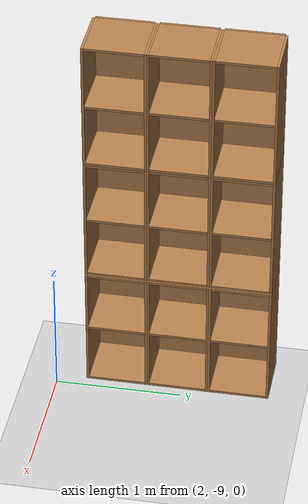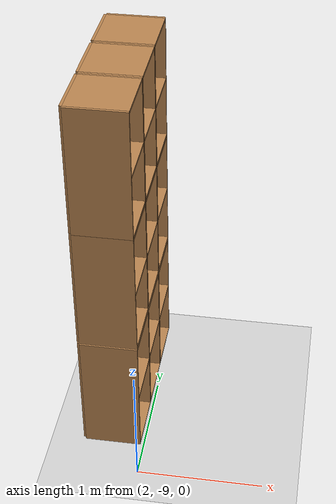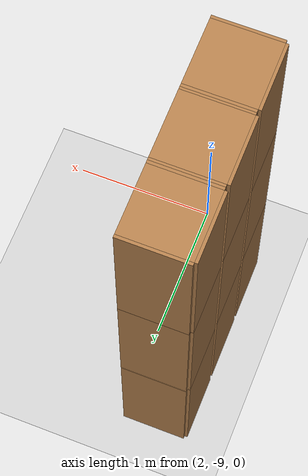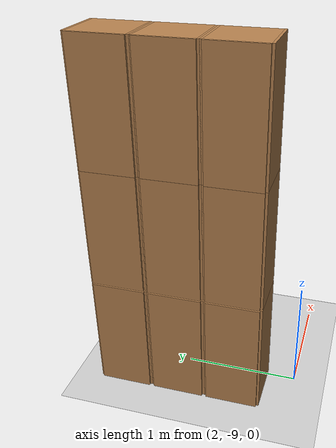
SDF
<sdf version="1.6">
 <world name="default">
  <model name="ground_plane">
   <static>1</static>
   <link name="link">
    <collision name="collision">
     <geometry><plane><normal>0 0 1</normal><size>100 100</size></plane></geometry>
     <surface>
      <contact><collide_bitmask>65535</collide_bitmask></contact>
      <friction><ode><mu>100</mu><mu2>50</mu2></ode></friction>
     </surface>
    </collision>
    <visual name="visual">
     <cast_shadows>0</cast_shadows>
     <geometry><plane><normal>0 0 1</normal><size>100 100</size></plane></geometry>
     <material>
      <script><uri>file://media/materials/scripts/gazebo.material</uri><name>Gazebo/Grey</name></script>
     </material>
    </visual>
   </link>
  </model>
  <model name="Locker18_clone_4_clone_2_clone_1_clone_clone_clone_3_clone_2">
   <model name="Locker18">
    <model name="Locker3">
     <model name="cabinet">
      <static>1</static>
      <link name="cabinet_bottom_plate">
       <inertial>
        <pose>0 0 -1 0 -0 0</pose>
        <inertia><ixx>2.05</ixx><ixy>0</ixy><ixz>0</ixz><iyy>2.05</iyy><iyz>0</iyz><izz>2.05</izz></inertia>
        <mass>25</mass>
       </inertial>
       <collision name="cabinet_bottom_plate_geom">
        <pose>0 0 0.01 0 -0 0</pose>
        <geometry><box><size>0.45 0.45 0.02</size></box></geometry>
       </collision>
       <visual name="cabinet_bottom_plate_geom_visual">
        <pose>0 0 0.01 0 -0 0</pose>
        <geometry><box><size>0.45 0.45 0.02</size></box></geometry>
        <material>
         <script><uri>file://media/materials/scripts/gazebo.material</uri><name>Gazebo/Wood</name></script>
        </material>
       </visual>
       <collision name="cabinet_bottom_plate_geom_cabinet_back_plate">
        <pose>0.235 0 0.51 0 -0 0</pose>
        <geometry><box><size>0.02 0.45 1.02</size></box></geometry>
       </collision>
       <visual name="cabinet_bottom_plate_geom_cabinet_back_plate_visual">
        <pose>0.235 0 0.51 0 -0 0</pose>
        <geometry><box><size>0.02 0.45 1.02</size></box></geometry>
        <material>
         <script><uri>file://media/materials/scripts/gazebo.material</uri><name>Gazebo/Wood</name></script>
        </material>
       </visual>
       <collision name="cabinet_bottom_plate_geom_cabinet_left_plate">
        <pose>0 0.235 0.51 0 -0 0</pose>
        <geometry><box><size>0.45 0.02 1.02</size></box></geometry>
       </collision>
       <visual name="cabinet_bottom_plate_geom_cabinet_left_plate_visual">
        <pose>0 0.235 0.51 0 -0 0</pose>
        <geometry><box><size>0.45 0.02 1.02</size></box></geometry>
        <material>
         <script><uri>file://media/materials/scripts/gazebo.material</uri><name>Gazebo/Wood</name></script>
        </material>
       </visual>
       <collision name="cabinet_bottom_plate_geom_cabinet_middle_plate">
        <pose>0 0 0.51 0 -0 0</pose>
        <geometry><box><size>0.45 0.45 0.02</size></box></geometry>
       </collision>
       <visual name="cabinet_bottom_plate_geom_cabinet_middle_plate_visual">
        <pose>0 0 0.51 0 -0 0</pose>
        <geometry><box><size>0.45 0.45 0.02</size></box></geometry>
        <material>
         <script><uri>file://media/materials/scripts/gazebo.material</uri><name>Gazebo/Wood</name></script>
        </material>
       </visual>
       <collision name="cabinet_bottom_plate_geom_cabinet_right_plate">
        <pose>0 -0.235 0.51 0 -0 0</pose>
        <geometry><box><size>0.45 0.02 1.02</size></box></geometry>
       </collision>
       <visual name="cabinet_bottom_plate_geom_cabinet_right_plate_visual">
        <pose>0 -0.235 0.51 0 -0 0</pose>
        <geometry><box><size>0.45 0.02 1.02</size></box></geometry>
        <material>
         <script><uri>file://media/materials/scripts/gazebo.material</uri><name>Gazebo/Wood</name></script>
        </material>
       </visual>
       <collision name="cabinet_bottom_plate_geom_cabinet_top_plate">
        <pose>0 0 1.01 0 -0 0</pose>
        <geometry><box><size>0.45 0.45 0.02</size></box></geometry>
       </collision>
       <visual name="cabinet_bottom_plate_geom_cabinet_top_plate_visual">
        <pose>0 0 1.01 0 -0 0</pose>
        <geometry><box><size>0.45 0.45 0.02</size></box></geometry>
        <material>
         <script><uri>file://media/materials/scripts/gazebo.material</uri><name>Gazebo/Wood</name></script>
        </material>
       </visual>
      </link>
      <pose>-0.676968 1.45758 0 0 -0 0</pose>
     </model>
     <model name="cabinet_clone">
      <static>1</static>
      <link name="cabinet_bottom_plate">
       <inertial>
        <pose>0 0 -1 0 -0 0</pose>
        <inertia><ixx>2.05</ixx><ixy>0</ixy><ixz>0</ixz><iyy>2.05</iyy><iyz>0</iyz><izz>2.05</izz></inertia>
        <mass>25</mass>
       </inertial>
       <collision name="cabinet_bottom_plate_geom">
        <pose>0 0 0.01 0 -0 0</pose>
        <geometry><box><size>0.45 0.45 0.02</size></box></geometry>
       </collision>
       <visual name="cabinet_bottom_plate_geom_visual">
        <pose>0 0 0.01 0 -0 0</pose>
        <geometry><box><size>0.45 0.45 0.02</size></box></geometry>
        <material>
         <script><uri>file://media/materials/scripts/gazebo.material</uri><name>Gazebo/Wood</name></script>
        </material>
       </visual>
       <collision name="cabinet_bottom_plate_geom_cabinet_back_plate">
        <pose>0.235 0 0.51 0 -0 0</pose>
        <geometry><box><size>0.02 0.45 1.02</size></box></geometry>
       </collision>
       <visual name="cabinet_bottom_plate_geom_cabinet_back_plate_visual">
        <pose>0.235 0 0.51 0 -0 0</pose>
        <geometry><box><size>0.02 0.45 1.02</size></box></geometry>
        <material>
         <script><uri>file://media/materials/scripts/gazebo.material</uri><name>Gazebo/Wood</name></script>
        </material>
       </visual>
       <collision name="cabinet_bottom_plate_geom_cabinet_left_plate">
        <pose>0 0.235 0.51 0 -0 0</pose>
        <geometry><box><size>0.45 0.02 1.02</size></box></geometry>
       </collision>
       <visual name="cabinet_bottom_plate_geom_cabinet_left_plate_visual">
        <pose>0 0.235 0.51 0 -0 0</pose>
        <geometry><box><size>0.45 0.02 1.02</size></box></geometry>
        <material>
         <script><uri>file://media/materials/scripts/gazebo.material</uri><name>Gazebo/Wood</name></script>
        </material>
       </visual>
       <collision name="cabinet_bottom_plate_geom_cabinet_middle_plate">
        <pose>0 0 0.51 0 -0 0</pose>
        <geometry><box><size>0.45 0.45 0.02</size></box></geometry>
       </collision>
       <visual name="cabinet_bottom_plate_geom_cabinet_middle_plate_visual">
        <pose>0 0 0.51 0 -0 0</pose>
        <geometry><box><size>0.45 0.45 0.02</size></box></geometry>
        <material>
         <script><uri>file://media/materials/scripts/gazebo.material</uri><name>Gazebo/Wood</name></script>
        </material>
       </visual>
       <collision name="cabinet_bottom_plate_geom_cabinet_right_plate">
        <pose>0 -0.235 0.51 0 -0 0</pose>
        <geometry><box><size>0.45 0.02 1.02</size></box></geometry>
       </collision>
       <visual name="cabinet_bottom_plate_geom_cabinet_right_plate_visual">
        <pose>0 -0.235 0.51 0 -0 0</pose>
        <geometry><box><size>0.45 0.02 1.02</size></box></geometry>
        <material>
         <script><uri>file://media/materials/scripts/gazebo.material</uri><name>Gazebo/Wood</name></script>
        </material>
       </visual>
       <collision name="cabinet_bottom_plate_geom_cabinet_top_plate">
        <pose>0 0 1.01 0 -0 0</pose>
        <geometry><box><size>0.45 0.45 0.02</size></box></geometry>
       </collision>
       <visual name="cabinet_bottom_plate_geom_cabinet_top_plate_visual">
        <pose>0 0 1.01 0 -0 0</pose>
        <geometry><box><size>0.45 0.45 0.02</size></box></geometry>
        <material>
         <script><uri>file://media/materials/scripts/gazebo.material</uri><name>Gazebo/Wood</name></script>
        </material>
       </visual>
      </link>
      <pose>-0.676968 0.970971 0 0 -0 0</pose>
     </model>
     <model name="cabinet_clone_0">
      <static>1</static>
      <link name="cabinet_bottom_plate">
       <inertial>
        <pose>0 0 -1 0 -0 0</pose>
        <inertia><ixx>2.05</ixx><ixy>0</ixy><ixz>0</ixz><iyy>2.05</iyy><iyz>0</iyz><izz>2.05</izz></inertia>
        <mass>25</mass>
       </inertial>
       <collision name="cabinet_bottom_plate_geom">
        <pose>0 0 0.01 0 -0 0</pose>
        <geometry><box><size>0.45 0.45 0.02</size></box></geometry>
       </collision>
       <visual name="cabinet_bottom_plate_geom_visual">
        <pose>0 0 0.01 0 -0 0</pose>
        <geometry><box><size>0.45 0.45 0.02</size></box></geometry>
        <material>
         <script><uri>file://media/materials/scripts/gazebo.material</uri><name>Gazebo/Wood</name></script>
        </material>
       </visual>
       <collision name="cabinet_bottom_plate_geom_cabinet_back_plate">
        <pose>0.235 0 0.51 0 -0 0</pose>
        <geometry><box><size>0.02 0.45 1.02</size></box></geometry>
       </collision>
       <visual name="cabinet_bottom_plate_geom_cabinet_back_plate_visual">
        <pose>0.235 0 0.51 0 -0 0</pose>
        <geometry><box><size>0.02 0.45 1.02</size></box></geometry>
        <material>
         <script><uri>file://media/materials/scripts/gazebo.material</uri><name>Gazebo/Wood</name></script>
        </material>
       </visual>
       <collision name="cabinet_bottom_plate_geom_cabinet_left_plate">
        <pose>0 0.235 0.51 0 -0 0</pose>
        <geometry><box><size>0.45 0.02 1.02</size></box></geometry>
       </collision>
       <visual name="cabinet_bottom_plate_geom_cabinet_left_plate_visual">
        <pose>0 0.235 0.51 0 -0 0</pose>
        <geometry><box><size>0.45 0.02 1.02</size></box></geometry>
        <material>
         <script><uri>file://media/materials/scripts/gazebo.material</uri><name>Gazebo/Wood</name></script>
        </material>
       </visual>
       <collision name="cabinet_bottom_plate_geom_cabinet_middle_plate">
        <pose>0 0 0.51 0 -0 0</pose>
        <geometry><box><size>0.45 0.45 0.02</size></box></geometry>
       </collision>
       <visual name="cabinet_bottom_plate_geom_cabinet_middle_plate_visual">
        <pose>0 0 0.51 0 -0 0</pose>
        <geometry><box><size>0.45 0.45 0.02</size></box></geometry>
        <material>
         <script><uri>file://media/materials/scripts/gazebo.material</uri><name>Gazebo/Wood</name></script>
        </material>
       </visual>
       <collision name="cabinet_bottom_plate_geom_cabinet_right_plate">
        <pose>0 -0.235 0.51 0 -0 0</pose>
        <geometry><box><size>0.45 0.02 1.02</size></box></geometry>
       </collision>
       <visual name="cabinet_bottom_plate_geom_cabinet_right_plate_visual">
        <pose>0 -0.235 0.51 0 -0 0</pose>
        <geometry><box><size>0.45 0.02 1.02</size></box></geometry>
        <material>
         <script><uri>file://media/materials/scripts/gazebo.material</uri><name>Gazebo/Wood</name></script>
        </material>
       </visual>
       <collision name="cabinet_bottom_plate_geom_cabinet_top_plate">
        <pose>0 0 1.01 0 -0 0</pose>
        <geometry><box><size>0.45 0.45 0.02</size></box></geometry>
       </collision>
       <visual name="cabinet_bottom_plate_geom_cabinet_top_plate_visual">
        <pose>0 0 1.01 0 -0 0</pose>
        <geometry><box><size>0.45 0.45 0.02</size></box></geometry>
        <material>
         <script><uri>file://media/materials/scripts/gazebo.material</uri><name>Gazebo/Wood</name></script>
        </material>
       </visual>
      </link>
      <pose>-0.676968 0.48391 0 0 -0 0</pose>
     </model>
     <static>0</static>
     <pose>0 3e-06 -1.02763 0 -0 0</pose>
    </model>
    <model name="Locker3_clone">
     <model name="cabinet">
      <static>1</static>
      <link name="cabinet_bottom_plate">
       <inertial>
        <pose>0 0 -1 0 -0 0</pose>
        <inertia><ixx>2.05</ixx><ixy>0</ixy><ixz>0</ixz><iyy>2.05</iyy><iyz>0</iyz><izz>2.05</izz></inertia>
        <mass>25</mass>
       </inertial>
       <collision name="cabinet_bottom_plate_geom">
        <pose>0 0 0.01 0 -0 0</pose>
        <geometry><box><size>0.45 0.45 0.02</size></box></geometry>
       </collision>
       <visual name="cabinet_bottom_plate_geom_visual">
        <pose>0 0 0.01 0 -0 0</pose>
        <geometry><box><size>0.45 0.45 0.02</size></box></geometry>
        <material>
         <script><uri>file://media/materials/scripts/gazebo.material</uri><name>Gazebo/Wood</name></script>
        </material>
       </visual>
       <collision name="cabinet_bottom_plate_geom_cabinet_back_plate">
        <pose>0.235 0 0.51 0 -0 0</pose>
        <geometry><box><size>0.02 0.45 1.02</size></box></geometry>
       </collision>
       <visual name="cabinet_bottom_plate_geom_cabinet_back_plate_visual">
        <pose>0.235 0 0.51 0 -0 0</pose>
        <geometry><box><size>0.02 0.45 1.02</size></box></geometry>
        <material>
         <script><uri>file://media/materials/scripts/gazebo.material</uri><name>Gazebo/Wood</name></script>
        </material>
       </visual>
       <collision name="cabinet_bottom_plate_geom_cabinet_left_plate">
        <pose>0 0.235 0.51 0 -0 0</pose>
        <geometry><box><size>0.45 0.02 1.02</size></box></geometry>
       </collision>
       <visual name="cabinet_bottom_plate_geom_cabinet_left_plate_visual">
        <pose>0 0.235 0.51 0 -0 0</pose>
        <geometry><box><size>0.45 0.02 1.02</size></box></geometry>
        <material>
         <script><uri>file://media/materials/scripts/gazebo.material</uri><name>Gazebo/Wood</name></script>
        </material>
       </visual>
       <collision name="cabinet_bottom_plate_geom_cabinet_middle_plate">
        <pose>0 0 0.51 0 -0 0</pose>
        <geometry><box><size>0.45 0.45 0.02</size></box></geometry>
       </collision>
       <visual name="cabinet_bottom_plate_geom_cabinet_middle_plate_visual">
        <pose>0 0 0.51 0 -0 0</pose>
        <geometry><box><size>0.45 0.45 0.02</size></box></geometry>
        <material>
         <script><uri>file://media/materials/scripts/gazebo.material</uri><name>Gazebo/Wood</name></script>
        </material>
       </visual>
       <collision name="cabinet_bottom_plate_geom_cabinet_right_plate">
        <pose>0 -0.235 0.51 0 -0 0</pose>
        <geometry><box><size>0.45 0.02 1.02</size></box></geometry>
       </collision>
       <visual name="cabinet_bottom_plate_geom_cabinet_right_plate_visual">
        <pose>0 -0.235 0.51 0 -0 0</pose>
        <geometry><box><size>0.45 0.02 1.02</size></box></geometry>
        <material>
         <script><uri>file://media/materials/scripts/gazebo.material</uri><name>Gazebo/Wood</name></script>
        </material>
       </visual>
       <collision name="cabinet_bottom_plate_geom_cabinet_top_plate">
        <pose>0 0 1.01 0 -0 0</pose>
        <geometry><box><size>0.45 0.45 0.02</size></box></geometry>
       </collision>
       <visual name="cabinet_bottom_plate_geom_cabinet_top_plate_visual">
        <pose>0 0 1.01 0 -0 0</pose>
        <geometry><box><size>0.45 0.45 0.02</size></box></geometry>
        <material>
         <script><uri>file://media/materials/scripts/gazebo.material</uri><name>Gazebo/Wood</name></script>
        </material>
       </visual>
      </link>
      <pose>-0.676968 1.45758 0 0 -0 0</pose>
     </model>
     <model name="cabinet_clone">
      <static>1</static>
      <link name="cabinet_bottom_plate">
       <inertial>
        <pose>0 0 -1 0 -0 0</pose>
        <inertia><ixx>2.05</ixx><ixy>0</ixy><ixz>0</ixz><iyy>2.05</iyy><iyz>0</iyz><izz>2.05</izz></inertia>
        <mass>25</mass>
       </inertial>
       <collision name="cabinet_bottom_plate_geom">
        <pose>0 0 0.01 0 -0 0</pose>
        <geometry><box><size>0.45 0.45 0.02</size></box></geometry>
       </collision>
       <visual name="cabinet_bottom_plate_geom_visual">
        <pose>0 0 0.01 0 -0 0</pose>
        <geometry><box><size>0.45 0.45 0.02</size></box></geometry>
        <material>
         <script><uri>file://media/materials/scripts/gazebo.material</uri><name>Gazebo/Wood</name></script>
        </material>
       </visual>
       <collision name="cabinet_bottom_plate_geom_cabinet_back_plate">
        <pose>0.235 0 0.51 0 -0 0</pose>
        <geometry><box><size>0.02 0.45 1.02</size></box></geometry>
       </collision>
       <visual name="cabinet_bottom_plate_geom_cabinet_back_plate_visual">
        <pose>0.235 0 0.51 0 -0 0</pose>
        <geometry><box><size>0.02 0.45 1.02</size></box></geometry>
        <material>
         <script><uri>file://media/materials/scripts/gazebo.material</uri><name>Gazebo/Wood</name></script>
        </material>
       </visual>
       <collision name="cabinet_bottom_plate_geom_cabinet_left_plate">
        <pose>0 0.235 0.51 0 -0 0</pose>
        <geometry><box><size>0.45 0.02 1.02</size></box></geometry>
       </collision>
       <visual name="cabinet_bottom_plate_geom_cabinet_left_plate_visual">
        <pose>0 0.235 0.51 0 -0 0</pose>
        <geometry><box><size>0.45 0.02 1.02</size></box></geometry>
        <material>
         <script><uri>file://media/materials/scripts/gazebo.material</uri><name>Gazebo/Wood</name></script>
        </material>
       </visual>
       <collision name="cabinet_bottom_plate_geom_cabinet_middle_plate">
        <pose>0 0 0.51 0 -0 0</pose>
        <geometry><box><size>0.45 0.45 0.02</size></box></geometry>
       </collision>
       <visual name="cabinet_bottom_plate_geom_cabinet_middle_plate_visual">
        <pose>0 0 0.51 0 -0 0</pose>
        <geometry><box><size>0.45 0.45 0.02</size></box></geometry>
        <material>
         <script><uri>file://media/materials/scripts/gazebo.material</uri><name>Gazebo/Wood</name></script>
        </material>
       </visual>
       <collision name="cabinet_bottom_plate_geom_cabinet_right_plate">
        <pose>0 -0.235 0.51 0 -0 0</pose>
        <geometry><box><size>0.45 0.02 1.02</size></box></geometry>
       </collision>
       <visual name="cabinet_bottom_plate_geom_cabinet_right_plate_visual">
        <pose>0 -0.235 0.51 0 -0 0</pose>
        <geometry><box><size>0.45 0.02 1.02</size></box></geometry>
        <material>
         <script><uri>file://media/materials/scripts/gazebo.material</uri><name>Gazebo/Wood</name></script>
        </material>
       </visual>
       <collision name="cabinet_bottom_plate_geom_cabinet_top_plate">
        <pose>0 0 1.01 0 -0 0</pose>
        <geometry><box><size>0.45 0.45 0.02</size></box></geometry>
       </collision>
       <visual name="cabinet_bottom_plate_geom_cabinet_top_plate_visual">
        <pose>0 0 1.01 0 -0 0</pose>
        <geometry><box><size>0.45 0.45 0.02</size></box></geometry>
        <material>
         <script><uri>file://media/materials/scripts/gazebo.material</uri><name>Gazebo/Wood</name></script>
        </material>
       </visual>
      </link>
      <pose>-0.676968 0.970971 0 0 -0 0</pose>
     </model>
     <model name="cabinet_clone_0">
      <static>1</static>
      <link name="cabinet_bottom_plate">
       <inertial>
        <pose>0 0 -1 0 -0 0</pose>
        <inertia><ixx>2.05</ixx><ixy>0</ixy><ixz>0</ixz><iyy>2.05</iyy><iyz>0</iyz><izz>2.05</izz></inertia>
        <mass>25</mass>
       </inertial>
       <collision name="cabinet_bottom_plate_geom">
        <pose>0 0 0.01 0 -0 0</pose>
        <geometry><box><size>0.45 0.45 0.02</size></box></geometry>
       </collision>
       <visual name="cabinet_bottom_plate_geom_visual">
        <pose>0 0 0.01 0 -0 0</pose>
        <geometry><box><size>0.45 0.45 0.02</size></box></geometry>
        <material>
         <script><uri>file://media/materials/scripts/gazebo.material</uri><name>Gazebo/Wood</name></script>
        </material>
       </visual>
       <collision name="cabinet_bottom_plate_geom_cabinet_back_plate">
        <pose>0.235 0 0.51 0 -0 0</pose>
        <geometry><box><size>0.02 0.45 1.02</size></box></geometry>
       </collision>
       <visual name="cabinet_bottom_plate_geom_cabinet_back_plate_visual">
        <pose>0.235 0 0.51 0 -0 0</pose>
        <geometry><box><size>0.02 0.45 1.02</size></box></geometry>
        <material>
         <script><uri>file://media/materials/scripts/gazebo.material</uri><name>Gazebo/Wood</name></script>
        </material>
       </visual>
       <collision name="cabinet_bottom_plate_geom_cabinet_left_plate">
        <pose>0 0.235 0.51 0 -0 0</pose>
        <geometry><box><size>0.45 0.02 1.02</size></box></geometry>
       </collision>
       <visual name="cabinet_bottom_plate_geom_cabinet_left_plate_visual">
        <pose>0 0.235 0.51 0 -0 0</pose>
        <geometry><box><size>0.45 0.02 1.02</size></box></geometry>
        <material>
         <script><uri>file://media/materials/scripts/gazebo.material</uri><name>Gazebo/Wood</name></script>
        </material>
       </visual>
       <collision name="cabinet_bottom_plate_geom_cabinet_middle_plate">
        <pose>0 0 0.51 0 -0 0</pose>
        <geometry><box><size>0.45 0.45 0.02</size></box></geometry>
       </collision>
       <visual name="cabinet_bottom_plate_geom_cabinet_middle_plate_visual">
        <pose>0 0 0.51 0 -0 0</pose>
        <geometry><box><size>0.45 0.45 0.02</size></box></geometry>
        <material>
         <script><uri>file://media/materials/scripts/gazebo.material</uri><name>Gazebo/Wood</name></script>
        </material>
       </visual>
       <collision name="cabinet_bottom_plate_geom_cabinet_right_plate">
        <pose>0 -0.235 0.51 0 -0 0</pose>
        <geometry><box><size>0.45 0.02 1.02</size></box></geometry>
       </collision>
       <visual name="cabinet_bottom_plate_geom_cabinet_right_plate_visual">
        <pose>0 -0.235 0.51 0 -0 0</pose>
        <geometry><box><size>0.45 0.02 1.02</size></box></geometry>
        <material>
         <script><uri>file://media/materials/scripts/gazebo.material</uri><name>Gazebo/Wood</name></script>
        </material>
       </visual>
       <collision name="cabinet_bottom_plate_geom_cabinet_top_plate">
        <pose>0 0 1.01 0 -0 0</pose>
        <geometry><box><size>0.45 0.45 0.02</size></box></geometry>
       </collision>
       <visual name="cabinet_bottom_plate_geom_cabinet_top_plate_visual">
        <pose>0 0 1.01 0 -0 0</pose>
        <geometry><box><size>0.45 0.45 0.02</size></box></geometry>
        <material>
         <script><uri>file://media/materials/scripts/gazebo.material</uri><name>Gazebo/Wood</name></script>
        </material>
       </visual>
      </link>
      <pose>-0.676968 0.48391 0 0 -0 0</pose>
     </model>
     <static>0</static>
     <pose>0 3e-06 0.003717 0 -0 0</pose>
    </model>
    <model name="Locker3_clone_clone">
     <model name="cabinet">
      <static>1</static>
      <link name="cabinet_bottom_plate">
       <inertial>
        <pose>0 0 -1 0 -0 0</pose>
        <inertia><ixx>2.05</ixx><ixy>0</ixy><ixz>0</ixz><iyy>2.05</iyy><iyz>0</iyz><izz>2.05</izz></inertia>
        <mass>25</mass>
       </inertial>
       <collision name="cabinet_bottom_plate_geom">
        <pose>0 0 0.01 0 -0 0</pose>
        <geometry><box><size>0.45 0.45 0.02</size></box></geometry>
       </collision>
       <visual name="cabinet_bottom_plate_geom_visual">
        <pose>0 0 0.01 0 -0 0</pose>
        <geometry><box><size>0.45 0.45 0.02</size></box></geometry>
        <material>
         <script><uri>file://media/materials/scripts/gazebo.material</uri><name>Gazebo/Wood</name></script>
        </material>
       </visual>
       <collision name="cabinet_bottom_plate_geom_cabinet_back_plate">
        <pose>0.235 0 0.51 0 -0 0</pose>
        <geometry><box><size>0.02 0.45 1.02</size></box></geometry>
       </collision>
       <visual name="cabinet_bottom_plate_geom_cabinet_back_plate_visual">
        <pose>0.235 0 0.51 0 -0 0</pose>
        <geometry><box><size>0.02 0.45 1.02</size></box></geometry>
        <material>
         <script><uri>file://media/materials/scripts/gazebo.material</uri><name>Gazebo/Wood</name></script>
        </material>
       </visual>
       <collision name="cabinet_bottom_plate_geom_cabinet_left_plate">
        <pose>0 0.235 0.51 0 -0 0</pose>
        <geometry><box><size>0.45 0.02 1.02</size></box></geometry>
       </collision>
       <visual name="cabinet_bottom_plate_geom_cabinet_left_plate_visual">
        <pose>0 0.235 0.51 0 -0 0</pose>
        <geometry><box><size>0.45 0.02 1.02</size></box></geometry>
        <material>
         <script><uri>file://media/materials/scripts/gazebo.material</uri><name>Gazebo/Wood</name></script>
        </material>
       </visual>
       <collision name="cabinet_bottom_plate_geom_cabinet_middle_plate">
        <pose>0 0 0.51 0 -0 0</pose>
        <geometry><box><size>0.45 0.45 0.02</size></box></geometry>
       </collision>
       <visual name="cabinet_bottom_plate_geom_cabinet_middle_plate_visual">
        <pose>0 0 0.51 0 -0 0</pose>
        <geometry><box><size>0.45 0.45 0.02</size></box></geometry>
        <material>
         <script><uri>file://media/materials/scripts/gazebo.material</uri><name>Gazebo/Wood</name></script>
        </material>
       </visual>
       <collision name="cabinet_bottom_plate_geom_cabinet_right_plate">
        <pose>0 -0.235 0.51 0 -0 0</pose>
        <geometry><box><size>0.45 0.02 1.02</size></box></geometry>
       </collision>
       <visual name="cabinet_bottom_plate_geom_cabinet_right_plate_visual">
        <pose>0 -0.235 0.51 0 -0 0</pose>
        <geometry><box><size>0.45 0.02 1.02</size></box></geometry>
        <material>
         <script><uri>file://media/materials/scripts/gazebo.material</uri><name>Gazebo/Wood</name></script>
        </material>
       </visual>
       <collision name="cabinet_bottom_plate_geom_cabinet_top_plate">
        <pose>0 0 1.01 0 -0 0</pose>
        <geometry><box><size>0.45 0.45 0.02</size></box></geometry>
       </collision>
       <visual name="cabinet_bottom_plate_geom_cabinet_top_plate_visual">
        <pose>0 0 1.01 0 -0 0</pose>
        <geometry><box><size>0.45 0.45 0.02</size></box></geometry>
        <material>
         <script><uri>file://media/materials/scripts/gazebo.material</uri><name>Gazebo/Wood</name></script>
        </material>
       </visual>
      </link>
      <pose>-0.676968 1.45758 0 0 -0 0</pose>
     </model>
     <model name="cabinet_clone">
      <static>1</static>
      <link name="cabinet_bottom_plate">
       <inertial>
        <pose>0 0 -1 0 -0 0</pose>
        <inertia><ixx>2.05</ixx><ixy>0</ixy><ixz>0</ixz><iyy>2.05</iyy><iyz>0</iyz><izz>2.05</izz></inertia>
        <mass>25</mass>
       </inertial>
       <collision name="cabinet_bottom_plate_geom">
        <pose>0 0 0.01 0 -0 0</pose>
        <geometry><box><size>0.45 0.45 0.02</size></box></geometry>
       </collision>
       <visual name="cabinet_bottom_plate_geom_visual">
        <pose>0 0 0.01 0 -0 0</pose>
        <geometry><box><size>0.45 0.45 0.02</size></box></geometry>
        <material>
         <script><uri>file://media/materials/scripts/gazebo.material</uri><name>Gazebo/Wood</name></script>
        </material>
       </visual>
       <collision name="cabinet_bottom_plate_geom_cabinet_back_plate">
        <pose>0.235 0 0.51 0 -0 0</pose>
        <geometry><box><size>0.02 0.45 1.02</size></box></geometry>
       </collision>
       <visual name="cabinet_bottom_plate_geom_cabinet_back_plate_visual">
        <pose>0.235 0 0.51 0 -0 0</pose>
        <geometry><box><size>0.02 0.45 1.02</size></box></geometry>
        <material>
         <script><uri>file://media/materials/scripts/gazebo.material</uri><name>Gazebo/Wood</name></script>
        </material>
       </visual>
       <collision name="cabinet_bottom_plate_geom_cabinet_left_plate">
        <pose>0 0.235 0.51 0 -0 0</pose>
        <geometry><box><size>0.45 0.02 1.02</size></box></geometry>
       </collision>
       <visual name="cabinet_bottom_plate_geom_cabinet_left_plate_visual">
        <pose>0 0.235 0.51 0 -0 0</pose>
        <geometry><box><size>0.45 0.02 1.02</size></box></geometry>
        <material>
         <script><uri>file://media/materials/scripts/gazebo.material</uri><name>Gazebo/Wood</name></script>
        </material>
       </visual>
       <collision name="cabinet_bottom_plate_geom_cabinet_middle_plate">
        <pose>0 0 0.51 0 -0 0</pose>
        <geometry><box><size>0.45 0.45 0.02</size></box></geometry>
       </collision>
       <visual name="cabinet_bottom_plate_geom_cabinet_middle_plate_visual">
        <pose>0 0 0.51 0 -0 0</pose>
        <geometry><box><size>0.45 0.45 0.02</size></box></geometry>
        <material>
         <script><uri>file://media/materials/scripts/gazebo.material</uri><name>Gazebo/Wood</name></script>
        </material>
       </visual>
       <collision name="cabinet_bottom_plate_geom_cabinet_right_plate">
        <pose>0 -0.235 0.51 0 -0 0</pose>
        <geometry><box><size>0.45 0.02 1.02</size></box></geometry>
       </collision>
       <visual name="cabinet_bottom_plate_geom_cabinet_right_plate_visual">
        <pose>0 -0.235 0.51 0 -0 0</pose>
        <geometry><box><size>0.45 0.02 1.02</size></box></geometry>
        <material>
         <script><uri>file://media/materials/scripts/gazebo.material</uri><name>Gazebo/Wood</name></script>
        </material>
       </visual>
       <collision name="cabinet_bottom_plate_geom_cabinet_top_plate">
        <pose>0 0 1.01 0 -0 0</pose>
        <geometry><box><size>0.45 0.45 0.02</size></box></geometry>
       </collision>
       <visual name="cabinet_bottom_plate_geom_cabinet_top_plate_visual">
        <pose>0 0 1.01 0 -0 0</pose>
        <geometry><box><size>0.45 0.45 0.02</size></box></geometry>
        <material>
         <script><uri>file://media/materials/scripts/gazebo.material</uri><name>Gazebo/Wood</name></script>
        </material>
       </visual>
      </link>
      <pose>-0.676968 0.970971 0 0 -0 0</pose>
     </model>
     <model name="cabinet_clone_0">
      <static>1</static>
      <link name="cabinet_bottom_plate">
       <inertial>
        <pose>0 0 -1 0 -0 0</pose>
        <inertia><ixx>2.05</ixx><ixy>0</ixy><ixz>0</ixz><iyy>2.05</iyy><iyz>0</iyz><izz>2.05</izz></inertia>
        <mass>25</mass>
       </inertial>
       <collision name="cabinet_bottom_plate_geom">
        <pose>0 0 0.01 0 -0 0</pose>
        <geometry><box><size>0.45 0.45 0.02</size></box></geometry>
       </collision>
       <visual name="cabinet_bottom_plate_geom_visual">
        <pose>0 0 0.01 0 -0 0</pose>
        <geometry><box><size>0.45 0.45 0.02</size></box></geometry>
        <material>
         <script><uri>file://media/materials/scripts/gazebo.material</uri><name>Gazebo/Wood</name></script>
        </material>
       </visual>
       <collision name="cabinet_bottom_plate_geom_cabinet_back_plate">
        <pose>0.235 0 0.51 0 -0 0</pose>
        <geometry><box><size>0.02 0.45 1.02</size></box></geometry>
       </collision>
       <visual name="cabinet_bottom_plate_geom_cabinet_back_plate_visual">
        <pose>0.235 0 0.51 0 -0 0</pose>
        <geometry><box><size>0.02 0.45 1.02</size></box></geometry>
        <material>
         <script><uri>file://media/materials/scripts/gazebo.material</uri><name>Gazebo/Wood</name></script>
        </material>
       </visual>
       <collision name="cabinet_bottom_plate_geom_cabinet_left_plate">
        <pose>0 0.235 0.51 0 -0 0</pose>
        <geometry><box><size>0.45 0.02 1.02</size></box></geometry>
       </collision>
       <visual name="cabinet_bottom_plate_geom_cabinet_left_plate_visual">
        <pose>0 0.235 0.51 0 -0 0</pose>
        <geometry><box><size>0.45 0.02 1.02</size></box></geometry>
        <material>
         <script><uri>file://media/materials/scripts/gazebo.material</uri><name>Gazebo/Wood</name></script>
        </material>
       </visual>
       <collision name="cabinet_bottom_plate_geom_cabinet_middle_plate">
        <pose>0 0 0.51 0 -0 0</pose>
        <geometry><box><size>0.45 0.45 0.02</size></box></geometry>
       </collision>
       <visual name="cabinet_bottom_plate_geom_cabinet_middle_plate_visual">
        <pose>0 0 0.51 0 -0 0</pose>
        <geometry><box><size>0.45 0.45 0.02</size></box></geometry>
        <material>
         <script><uri>file://media/materials/scripts/gazebo.material</uri><name>Gazebo/Wood</name></script>
        </material>
       </visual>
       <collision name="cabinet_bottom_plate_geom_cabinet_right_plate">
        <pose>0 -0.235 0.51 0 -0 0</pose>
        <geometry><box><size>0.45 0.02 1.02</size></box></geometry>
       </collision>
       <visual name="cabinet_bottom_plate_geom_cabinet_right_plate_visual">
        <pose>0 -0.235 0.51 0 -0 0</pose>
        <geometry><box><size>0.45 0.02 1.02</size></box></geometry>
        <material>
         <script><uri>file://media/materials/scripts/gazebo.material</uri><name>Gazebo/Wood</name></script>
        </material>
       </visual>
       <collision name="cabinet_bottom_plate_geom_cabinet_top_plate">
        <pose>0 0 1.01 0 -0 0</pose>
        <geometry><box><size>0.45 0.45 0.02</size></box></geometry>
       </collision>
       <visual name="cabinet_bottom_plate_geom_cabinet_top_plate_visual">
        <pose>0 0 1.01 0 -0 0</pose>
        <geometry><box><size>0.45 0.45 0.02</size></box></geometry>
        <material>
         <script><uri>file://media/materials/scripts/gazebo.material</uri><name>Gazebo/Wood</name></script>
        </material>
       </visual>
      </link>
      <pose>-0.676968 0.48391 0 0 -0 0</pose>
     </model>
     <static>0</static>
     <pose>0 3e-06 1.02391 0 -0 0</pose>
    </model>
    <static>0</static>
    <pose>-0 4e-06 4e-06 0 -0 0</pose>
   </model>
   <static>0</static>
   <pose>1.08178 -7.05538 1.08672 0 -0 3.14119</pose>
  </model>
 </world>
</sdf>
